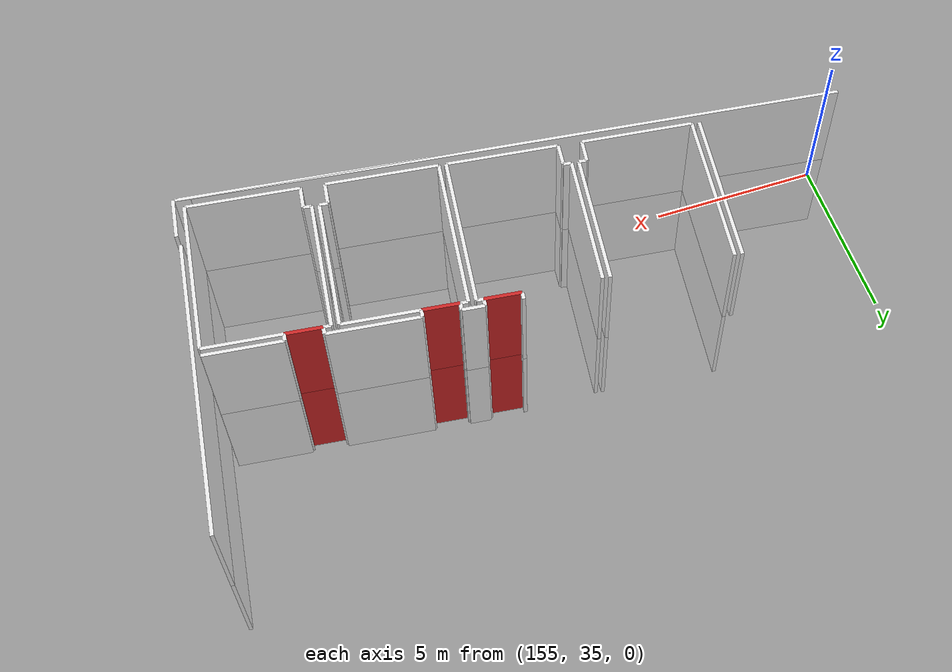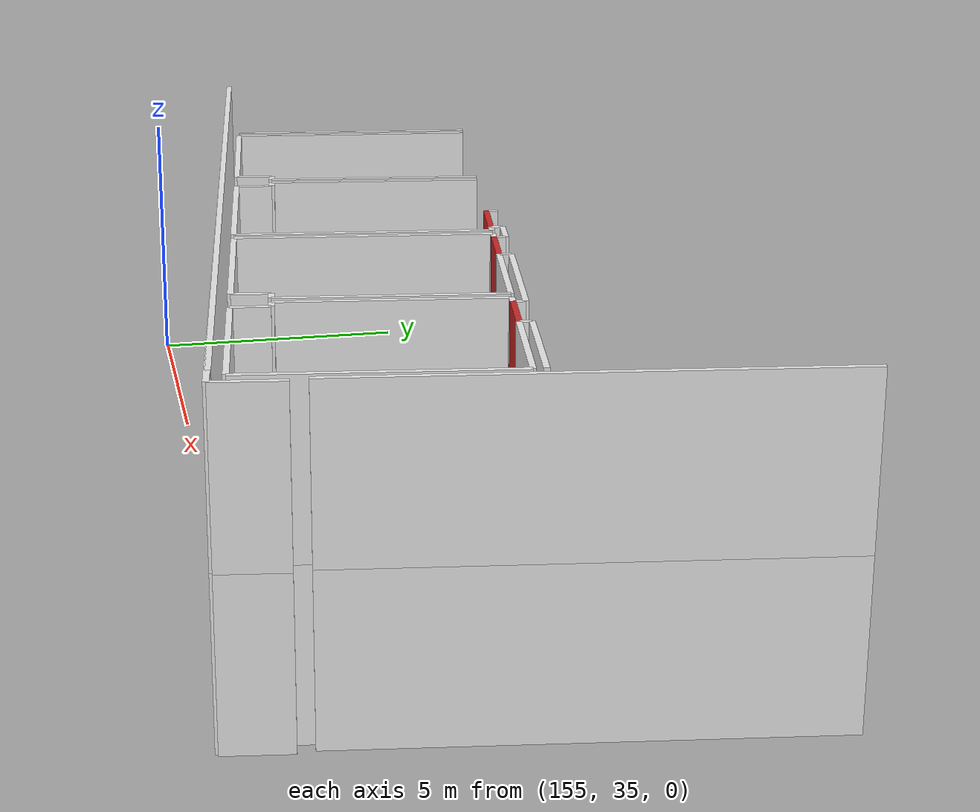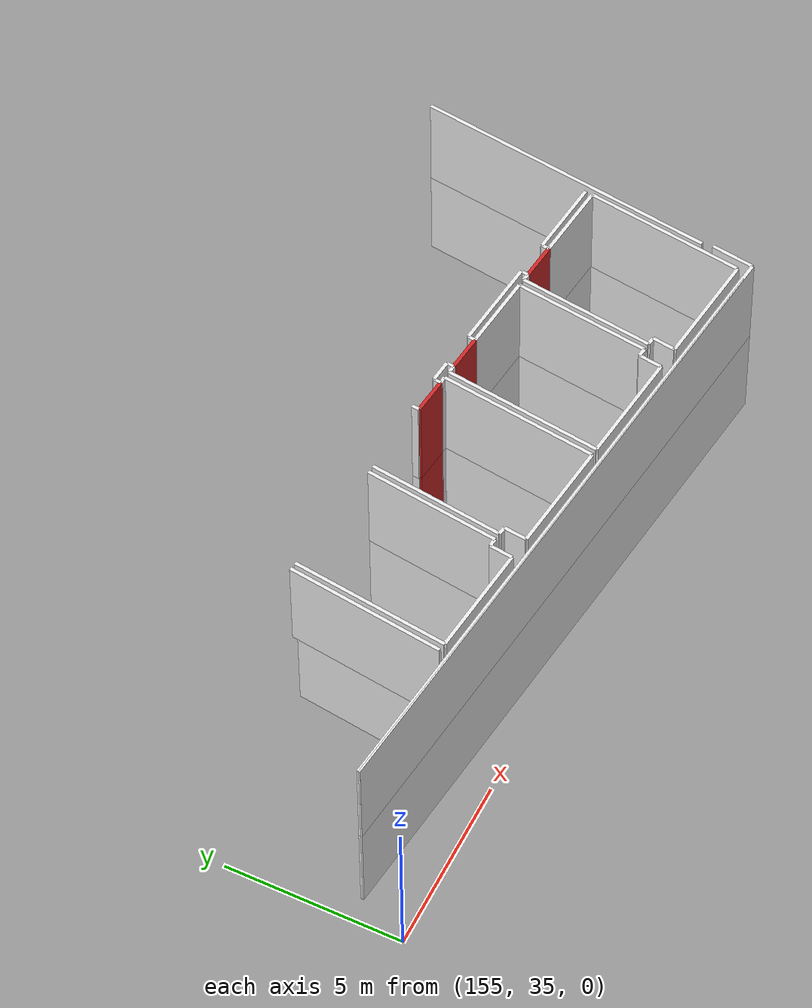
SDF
<sdf version="1.6">
 <world name="default">
  <model name="wall_166.5_39.9_1.5">
   <static>true</static>
   <pose>166.50500000000466 39.91000000014901 1.5 0 0 -0.1206236686924795</pose>
   <link name="link">
    <visual name="visual">
     <geometry><box><size>0.9972462083198822 0.1 3</size></box></geometry>
     <material>
      <script><uri>file://media/materials/scripts/gazebo.material</uri><name>Gazebo/Red</name></script>
     </material>
    </visual>
    <collision name="collision"><geometry><box><size>0.9972462083198822 0.1 3</size></box></geometry></collision>
   </link>
  </model>
  <model name="wall_168.1_39.7_1.5">
   <static>true</static>
   <pose>168.09500000000116 39.71999999997206 1.5 0 0 -0.12062366822190172</pose>
   <link name="link">
    <visual name="visual">
     <geometry><box><size>0.9972462083216332 0.1 3</size></box></geometry>
     <material>
      <script><uri>file://media/materials/scripts/gazebo.material</uri><name>Gazebo/Red</name></script>
     </material>
    </visual>
    <collision name="collision"><geometry><box><size>0.9972462083216332 0.1 3</size></box></geometry></collision>
   </link>
  </model>
  <model name="wall_171.6_39.3_1.5">
   <static>true</static>
   <pose>171.56500000000233 39.300000000046566 1.5 0 0 -0.12062366822892527</pose>
   <link name="link">
    <visual name="visual">
     <geometry><box><size>0.9972462082638486 0.1 3</size></box></geometry>
     <material>
      <script><uri>file://media/materials/scripts/gazebo.material</uri><name>Gazebo/Red</name></script>
     </material>
    </visual>
    <collision name="collision"><geometry><box><size>0.9972462082638486 0.1 3</size></box></geometry></collision>
   </link>
  </model>
  <model name="wall_166.5_39.9_4.5">
   <static>true</static>
   <pose>166.50500000000466 39.91000000014901 4.5 0 0 -0.1206236686924795</pose>
   <link name="link">
    <visual name="visual">
     <geometry><box><size>0.9972462083198822 0.1 3</size></box></geometry>
     <material>
      <script><uri>file://media/materials/scripts/gazebo.material</uri><name>Gazebo/Red</name></script>
     </material>
    </visual>
    <collision name="collision"><geometry><box><size>0.9972462083198822 0.1 3</size></box></geometry></collision>
   </link>
  </model>
  <model name="wall_168.1_39.7_4.5">
   <static>true</static>
   <pose>168.09500000000116 39.71999999997206 4.5 0 0 -0.12062366822190172</pose>
   <link name="link">
    <visual name="visual">
     <geometry><box><size>0.9972462083216332 0.1 3</size></box></geometry>
     <material>
      <script><uri>file://media/materials/scripts/gazebo.material</uri><name>Gazebo/Red</name></script>
     </material>
    </visual>
    <collision name="collision"><geometry><box><size>0.9972462083216332 0.1 3</size></box></geometry></collision>
   </link>
  </model>
  <model name="wall_171.6_39.3_4.5">
   <static>true</static>
   <pose>171.56500000000233 39.300000000046566 4.5 0 0 -0.12062366822892527</pose>
   <link name="link">
    <visual name="visual">
     <geometry><box><size>0.9972462082638486 0.1 3</size></box></geometry>
     <material>
      <script><uri>file://media/materials/scripts/gazebo.material</uri><name>Gazebo/Red</name></script>
     </material>
    </visual>
    <collision name="collision"><geometry><box><size>0.9972462082638486 0.1 3</size></box></geometry></collision>
   </link>
  </model>
  <model name="wall_166.9_37.6_1.5">
   <static>true</static>
   <pose>166.92499999998836 37.63000000012107 1.5 0 0 -1.690673321615393</pose>
   <link name="link">
    <visual name="visual">
     <geometry><box><size>4.4318055010582365 0.1 3</size></box></geometry>
     <material>
      <script><uri>file://media/materials/scripts/gazebo.material</uri><name>Gazebo/White</name></script>
     </material>
    </visual>
    <collision name="collision"><geometry><box><size>4.4318055010582365 0.1 3</size></box></geometry></collision>
   </link>
  </model>
  <model name="wall_165.1_35.6_1.5">
   <static>true</static>
   <pose>165.1349999999802 35.61499999999069 1.5 0 0 3.0208710707011033</pose>
   <link name="link">
    <visual name="visual">
     <geometry><box><size>3.0723606558584717 0.1 3</size></box></geometry>
     <material>
      <script><uri>file://media/materials/scripts/gazebo.material</uri><name>Gazebo/White</name></script>
     </material>
    </visual>
    <collision name="collision"><geometry><box><size>3.0723606558584717 0.1 3</size></box></geometry></collision>
   </link>
  </model>
  <model name="wall_163.6_36.1_1.5">
   <static>true</static>
   <pose>163.64499999998952 36.11999999987893 1.5 0 0 1.4618543698162652</pose>
   <link name="link">
    <visual name="visual">
     <geometry><box><size>0.6438167442431666 0.1 3</size></box></geometry>
     <material>
      <script><uri>file://media/materials/scripts/gazebo.material</uri><name>Gazebo/White</name></script>
     </material>
    </visual>
    <collision name="collision"><geometry><box><size>0.6438167442431666 0.1 3</size></box></geometry></collision>
   </link>
  </model>
  <model name="wall_163.6_36.5_1.5">
   <static>true</static>
   <pose>163.57000000000698 36.455000000074506 1.5 0 0 3.00606493842361</pose>
   <link name="link">
    <visual name="visual">
     <geometry><box><size>0.2220360331192952 0.1 3</size></box></geometry>
     <material>
      <script><uri>file://media/materials/scripts/gazebo.material</uri><name>Gazebo/White</name></script>
     </material>
    </visual>
    <collision name="collision"><geometry><box><size>0.2220360331192952 0.1 3</size></box></geometry></collision>
   </link>
  </model>
  <model name="wall_163.7_38.3_1.5">
   <static>true</static>
   <pose>163.69000000000233 38.34500000020489 1.5 0 0 1.44873942407576</pose>
   <link name="link">
    <visual name="visual">
     <geometry><box><size>3.7781079920994487 0.1 3</size></box></geometry>
     <material>
      <script><uri>file://media/materials/scripts/gazebo.material</uri><name>Gazebo/White</name></script>
     </material>
    </visual>
    <collision name="collision"><geometry><box><size>3.7781079920994487 0.1 3</size></box></geometry></collision>
   </link>
  </model>
  <model name="wall_167.1_39.8_1.5">
   <static>true</static>
   <pose>167.09500000000116 39.84000000008382 1.5 0 0 -0.10487693882591773</pose>
   <link name="link">
    <visual name="visual">
     <geometry><box><size>0.19104973174969345 0.1 3</size></box></geometry>
     <material>
      <script><uri>file://media/materials/scripts/gazebo.material</uri><name>Gazebo/White</name></script>
     </material>
    </visual>
    <collision name="collision"><geometry><box><size>0.19104973174969345 0.1 3</size></box></geometry></collision>
   </link>
  </model>
  <model name="wall_160.2_38.4_1.5">
   <static>true</static>
   <pose>160.17499999998836 38.44000000017695 1.5 0 0 -1.690673321615393</pose>
   <link name="link">
    <visual name="visual">
     <geometry><box><size>4.4318055010582365 0.1 3</size></box></geometry>
     <material>
      <script><uri>file://media/materials/scripts/gazebo.material</uri><name>Gazebo/White</name></script>
     </material>
    </visual>
    <collision name="collision"><geometry><box><size>4.4318055010582365 0.1 3</size></box></geometry></collision>
   </link>
  </model>
  <model name="wall_161.4_36.1_1.5">
   <static>true</static>
   <pose>161.43499999999767 36.06000000005588 1.5 0 0 -0.11748918977593945</pose>
   <link name="link">
    <visual name="visual">
     <geometry><box><size>3.071172414652986 0.1 3</size></box></geometry>
     <material>
      <script><uri>file://media/materials/scripts/gazebo.material</uri><name>Gazebo/White</name></script>
     </material>
    </visual>
    <collision name="collision"><geometry><box><size>3.071172414652986 0.1 3</size></box></geometry></collision>
   </link>
  </model>
  <model name="wall_163.0_36.2_1.5">
   <static>true</static>
   <pose>163.0 36.199999999953434 1.5 0 0 1.4464413323376855</pose>
   <link name="link">
    <visual name="visual">
     <geometry><box><size>0.6449806199880641 0.1 3</size></box></geometry>
     <material>
      <script><uri>file://media/materials/scripts/gazebo.material</uri><name>Gazebo/White</name></script>
     </material>
    </visual>
    <collision name="collision"><geometry><box><size>0.6449806199880641 0.1 3</size></box></geometry></collision>
   </link>
  </model>
  <model name="wall_163.1_36.5_1.5">
   <static>true</static>
   <pose>163.14999999999418 36.50500000012107 1.5 0 0 -0.13552771305276134</pose>
   <link name="link">
    <visual name="visual">
     <geometry><box><size>0.22203603311405212 0.1 3</size></box></geometry>
     <material>
      <script><uri>file://media/materials/scripts/gazebo.material</uri><name>Gazebo/White</name></script>
     </material>
    </visual>
    <collision name="collision"><geometry><box><size>0.22203603311405212 0.1 3</size></box></geometry></collision>
   </link>
  </model>
  <model name="wall_163.5_38.4_1.5">
   <static>true</static>
   <pose>163.4899999999907 38.37000000011176 1.5 0 0 1.4490608416488255</pose>
   <link name="link">
    <visual name="visual">
     <geometry><box><size>3.7880337905415886 0.1 3</size></box></geometry>
     <material>
      <script><uri>file://media/materials/scripts/gazebo.material</uri><name>Gazebo/White</name></script>
     </material>
    </visual>
    <collision name="collision"><geometry><box><size>3.7880337905415886 0.1 3</size></box></geometry></collision>
   </link>
  </model>
  <model name="wall_170.4_37.5_1.5">
   <static>true</static>
   <pose>170.44499999997788 37.53000000002794 1.5 0 0 -1.6899106225096845</pose>
   <link name="link">
    <visual name="visual">
     <geometry><box><size>3.7868324496644155 0.1 3</size></box></geometry>
     <material>
      <script><uri>file://media/materials/scripts/gazebo.material</uri><name>Gazebo/White</name></script>
     </material>
    </visual>
    <collision name="collision"><geometry><box><size>3.7868324496644155 0.1 3</size></box></geometry></collision>
   </link>
  </model>
  <model name="wall_170.1_35.7_1.5">
   <static>true</static>
   <pose>170.10499999998137 35.66500000003725 1.5 0 0 3.0118901153086775</pose>
   <link name="link">
    <visual name="visual">
     <geometry><box><size>0.23194827011012187 0.1 3</size></box></geometry>
     <material>
      <script><uri>file://media/materials/scripts/gazebo.material</uri><name>Gazebo/White</name></script>
     </material>
    </visual>
    <collision name="collision"><geometry><box><size>0.23194827011012187 0.1 3</size></box></geometry></collision>
   </link>
  </model>
  <model name="wall_169.9_35.4_1.5">
   <static>true</static>
   <pose>169.94999999998254 35.360000000102445 1.5 0 0 -1.695151321341658</pose>
   <link name="link">
    <visual name="visual">
     <geometry><box><size>0.6449806199952839 0.1 3</size></box></geometry>
     <material>
      <script><uri>file://media/materials/scripts/gazebo.material</uri><name>Gazebo/White</name></script>
     </material>
    </visual>
    <collision name="collision"><geometry><box><size>0.6449806199952839 0.1 3</size></box></geometry></collision>
   </link>
  </model>
  <model name="wall_168.4_35.2_1.5">
   <static>true</static>
   <pose>168.3849999999802 35.22500000009313 1.5 0 0 3.020871070550642</pose>
   <link name="link">
    <visual name="visual">
     <geometry><box><size>3.0723606559145504 0.1 3</size></box></geometry>
     <material>
      <script><uri>file://media/materials/scripts/gazebo.material</uri><name>Gazebo/White</name></script>
     </material>
    </visual>
    <collision name="collision"><geometry><box><size>3.0723606559145504 0.1 3</size></box></geometry></collision>
   </link>
  </model>
  <model name="wall_167.1_37.6_1.5">
   <static>true</static>
   <pose>167.125 37.60499999998137 1.5 0 0 1.4506488810357367</pose>
   <link name="link">
    <visual name="visual">
     <geometry><box><size>4.421877428998444 0.1 3</size></box></geometry>
     <material>
      <script><uri>file://media/materials/scripts/gazebo.material</uri><name>Gazebo/White</name></script>
     </material>
    </visual>
    <collision name="collision"><geometry><box><size>4.421877428998444 0.1 3</size></box></geometry></collision>
   </link>
  </model>
  <model name="wall_167.5_39.8_1.5">
   <static>true</static>
   <pose>167.49499999999534 39.78999999980442 1.5 0 0 -0.09495170644739931</pose>
   <link name="link">
    <visual name="visual">
     <geometry><box><size>0.21095023106197072 0.1 3</size></box></geometry>
     <material>
      <script><uri>file://media/materials/scripts/gazebo.material</uri><name>Gazebo/White</name></script>
     </material>
    </visual>
    <collision name="collision"><geometry><box><size>0.21095023106197072 0.1 3</size></box></geometry></collision>
   </link>
  </model>
  <model name="wall_169.6_39.5_1.5">
   <static>true</static>
   <pose>169.63000000000466 39.53500000014901 1.5 0 0 -0.11961849947817037</pose>
   <link name="link">
    <visual name="visual">
     <geometry><box><size>2.094970166810415 0.1 3</size></box></geometry>
     <material>
      <script><uri>file://media/materials/scripts/gazebo.material</uri><name>Gazebo/White</name></script>
     </material>
    </visual>
    <collision name="collision"><geometry><box><size>2.094970166810415 0.1 3</size></box></geometry></collision>
   </link>
  </model>
  <model name="wall_174.5_39.9_1.5">
   <static>true</static>
   <pose>174.4550000000163 39.90500000002794 1.5 0 0 -1.6917434222515764</pose>
   <link name="link">
    <visual name="visual">
     <geometry><box><size>8.371152847783126 0.1 3</size></box></geometry>
     <material>
      <script><uri>file://media/materials/scripts/gazebo.material</uri><name>Gazebo/White</name></script>
     </material>
    </visual>
    <collision name="collision"><geometry><box><size>8.371152847783126 0.1 3</size></box></geometry></collision>
   </link>
  </model>
  <model name="wall_171.0_39.4_1.5">
   <static>true</static>
   <pose>170.97000000000116 39.36999999987893 1.5 0 0 -0.09966865257760905</pose>
   <link name="link">
    <visual name="visual">
     <geometry><box><size>0.20099751243585498 0.1 3</size></box></geometry>
     <material>
      <script><uri>file://media/materials/scripts/gazebo.material</uri><name>Gazebo/White</name></script>
     </material>
    </visual>
    <collision name="collision"><geometry><box><size>0.20099751243585498 0.1 3</size></box></geometry></collision>
   </link>
  </model>
  <model name="wall_173.1_39.1_1.5">
   <static>true</static>
   <pose>173.10500000001048 39.11500000022352 1.5 0 0 -0.11905156754423915</pose>
   <link name="link">
    <visual name="visual">
     <geometry><box><size>2.1048990474859015 0.1 3</size></box></geometry>
     <material>
      <script><uri>file://media/materials/scripts/gazebo.material</uri><name>Gazebo/White</name></script>
     </material>
    </visual>
    <collision name="collision"><geometry><box><size>2.1048990474859015 0.1 3</size></box></geometry></collision>
   </link>
  </model>
  <model name="wall_173.9_36.8_1.5">
   <static>true</static>
   <pose>173.88000000000466 36.79000000003725 1.5 0 0 -1.6929129367177644</pose>
   <link name="link">
    <visual name="visual">
     <geometry><box><size>4.43301252009494 0.1 3</size></box></geometry>
     <material>
      <script><uri>file://media/materials/scripts/gazebo.material</uri><name>Gazebo/White</name></script>
     </material>
    </visual>
    <collision name="collision"><geometry><box><size>4.43301252009494 0.1 3</size></box></geometry></collision>
   </link>
  </model>
  <model name="wall_172.1_34.8_1.5">
   <static>true</static>
   <pose>172.08499999999185 34.77499999990687 1.5 0 0 3.020871070550642</pose>
   <link name="link">
    <visual name="visual">
     <geometry><box><size>3.0723606559145504 0.1 3</size></box></geometry>
     <material>
      <script><uri>file://media/materials/scripts/gazebo.material</uri><name>Gazebo/White</name></script>
     </material>
    </visual>
    <collision name="collision"><geometry><box><size>3.0723606559145504 0.1 3</size></box></geometry></collision>
   </link>
  </model>
  <model name="wall_170.6_35.3_1.5">
   <static>true</static>
   <pose>170.60000000000582 35.28000000002794 1.5 0 0 1.446441332248135</pose>
   <link name="link">
    <visual name="visual">
     <geometry><box><size>0.6449806199952839 0.1 3</size></box></geometry>
     <material>
      <script><uri>file://media/materials/scripts/gazebo.material</uri><name>Gazebo/White</name></script>
     </material>
    </visual>
    <collision name="collision"><geometry><box><size>0.6449806199952839 0.1 3</size></box></geometry></collision>
   </link>
  </model>
  <model name="wall_170.5_35.6_1.5">
   <static>true</static>
   <pose>170.52999999999884 35.61499999999069 1.5 0 0 3.006064940537032</pose>
   <link name="link">
    <visual name="visual">
     <geometry><box><size>0.22203603311405212 0.1 3</size></box></geometry>
     <material>
      <script><uri>file://media/materials/scripts/gazebo.material</uri><name>Gazebo/White</name></script>
     </material>
    </visual>
    <collision name="collision"><geometry><box><size>0.22203603311405212 0.1 3</size></box></geometry></collision>
   </link>
  </model>
  <model name="wall_170.6_37.5_1.5">
   <static>true</static>
   <pose>170.64499999998952 37.50499999988824 1.5 0 0 1.4513674007734978</pose>
   <link name="link">
    <visual name="visual">
     <geometry><box><size>3.7769034936056385 0.1 3</size></box></geometry>
     <material>
      <script><uri>file://media/materials/scripts/gazebo.material</uri><name>Gazebo/White</name></script>
     </material>
    </visual>
    <collision name="collision"><geometry><box><size>3.7769034936056385 0.1 3</size></box></geometry></collision>
   </link>
  </model>
  <model name="wall_173.1_39.3_1.5">
   <static>true</static>
   <pose>173.125 39.31499999994412 1.5 0 0 3.0225410860422697</pose>
   <link name="link">
    <visual name="visual">
     <geometry><box><size>2.104899047428106 0.1 3</size></box></geometry>
     <material>
      <script><uri>file://media/materials/scripts/gazebo.material</uri><name>Gazebo/White</name></script>
     </material>
    </visual>
    <collision name="collision"><geometry><box><size>2.104899047428106 0.1 3</size></box></geometry></collision>
   </link>
  </model>
  <model name="wall_172.1_39.3_1.5">
   <static>true</static>
   <pose>172.07000000000698 39.34000000008382 1.5 0 0 -1.670464979516584</pose>
   <link name="link">
    <visual name="visual">
     <geometry><box><size>0.20099751214626105 0.1 3</size></box></geometry>
     <material>
      <script><uri>file://media/materials/scripts/gazebo.material</uri><name>Gazebo/White</name></script>
     </material>
    </visual>
    <collision name="collision"><geometry><box><size>0.20099751214626105 0.1 3</size></box></geometry></collision>
   </link>
  </model>
  <model name="wall_171.1_39.5_1.5">
   <static>true</static>
   <pose>171.0800000000163 39.45999999996275 1.5 0 0 1.4711276743037347</pose>
   <link name="link">
    <visual name="visual">
     <geometry><box><size>0.20099751260961132 0.1 3</size></box></geometry>
     <material>
      <script><uri>file://media/materials/scripts/gazebo.material</uri><name>Gazebo/White</name></script>
     </material>
    </visual>
    <collision name="collision"><geometry><box><size>0.20099751260961132 0.1 3</size></box></geometry></collision>
   </link>
  </model>
  <model name="wall_169.9_39.7_1.5">
   <static>true</static>
   <pose>169.85500000001048 39.70999999996275 1.5 0 0 3.0207271763608894</pose>
   <link name="link">
    <visual name="visual">
     <geometry><box><size>2.4881519246295563 0.1 3</size></box></geometry>
     <material>
      <script><uri>file://media/materials/scripts/gazebo.material</uri><name>Gazebo/White</name></script>
     </material>
    </visual>
    <collision name="collision"><geometry><box><size>2.4881519246295563 0.1 3</size></box></geometry></collision>
   </link>
  </model>
  <model name="wall_168.6_39.8_1.5">
   <static>true</static>
   <pose>168.60500000001048 39.76000000000931 1.5 0 0 -1.7196862744613206</pose>
   <link name="link">
    <visual name="visual">
     <geometry><box><size>0.20223748388077126 0.1 3</size></box></geometry>
     <material>
      <script><uri>file://media/materials/scripts/gazebo.material</uri><name>Gazebo/White</name></script>
     </material>
    </visual>
    <collision name="collision"><geometry><box><size>0.20223748388077126 0.1 3</size></box></geometry></collision>
   </link>
  </model>
  <model name="wall_167.6_39.9_1.5">
   <static>true</static>
   <pose>167.60999999998603 39.87999999988824 1.5 0 0 1.4711276743037347</pose>
   <link name="link">
    <visual name="visual">
     <geometry><box><size>0.20099751260961132 0.1 3</size></box></geometry>
     <material>
      <script><uri>file://media/materials/scripts/gazebo.material</uri><name>Gazebo/White</name></script>
     </material>
    </visual>
    <collision name="collision"><geometry><box><size>0.20099751260961132 0.1 3</size></box></geometry></collision>
   </link>
  </model>
  <model name="wall_167.3_40.0_1.5">
   <static>true</static>
   <pose>167.32000000000698 40.014999999897555 1.5 0 0 3.0254510269809813</pose>
   <link name="link">
    <visual name="visual">
     <geometry><box><size>0.6040695323790061 0.1 3</size></box></geometry>
     <material>
      <script><uri>file://media/materials/scripts/gazebo.material</uri><name>Gazebo/White</name></script>
     </material>
    </visual>
    <collision name="collision"><geometry><box><size>0.6040695323790061 0.1 3</size></box></geometry></collision>
   </link>
  </model>
  <model name="wall_167.0_39.9_1.5">
   <static>true</static>
   <pose>167.0100000000093 39.949999999953434 1.5 0 0 -1.670464979516584</pose>
   <link name="link">
    <visual name="visual">
     <geometry><box><size>0.20099751214626105 0.1 3</size></box></geometry>
     <material>
      <script><uri>file://media/materials/scripts/gazebo.material</uri><name>Gazebo/White</name></script>
     </material>
    </visual>
    <collision name="collision"><geometry><box><size>0.20099751214626105 0.1 3</size></box></geometry></collision>
   </link>
  </model>
  <model name="wall_166.0_40.1_1.5">
   <static>true</static>
   <pose>166.02000000001863 40.07000000006519 1.5 0 0 1.471127674073209</pose>
   <link name="link">
    <visual name="visual">
     <geometry><box><size>0.20099751214626105 0.1 3</size></box></geometry>
     <material>
      <script><uri>file://media/materials/scripts/gazebo.material</uri><name>Gazebo/White</name></script>
     </material>
    </visual>
    <collision name="collision"><geometry><box><size>0.20099751214626105 0.1 3</size></box></geometry></collision>
   </link>
  </model>
  <model name="wall_164.5_35.4_1.5">
   <static>true</static>
   <pose>164.52499999999418 35.41500000003725 1.5 0 0 -0.11969610327774036</pose>
   <link name="link">
    <visual name="visual">
     <geometry><box><size>17.837628766185997 0.1 3</size></box></geometry>
     <material>
      <script><uri>file://media/materials/scripts/gazebo.material</uri><name>Gazebo/White</name></script>
     </material>
    </visual>
    <collision name="collision"><geometry><box><size>17.837628766185997 0.1 3</size></box></geometry></collision>
   </link>
  </model>
  <model name="wall_173.6_34.3_1.5">
   <static>true</static>
   <pose>173.6149999999907 34.31499999994412 1.5 0 0 -0.14784936588774888</pose>
   <link name="link">
    <visual name="visual">
     <geometry><box><size>0.4751841748369362 0.1 3</size></box></geometry>
     <material>
      <script><uri>file://media/materials/scripts/gazebo.material</uri><name>Gazebo/White</name></script>
     </material>
    </visual>
    <collision name="collision"><geometry><box><size>0.4751841748369362 0.1 3</size></box></geometry></collision>
   </link>
  </model>
  <model name="wall_173.9_34.9_1.5">
   <static>true</static>
   <pose>173.92499999998836 34.86999999987893 1.5 0 0 1.4443558295348613</pose>
   <link name="link">
    <visual name="visual">
     <geometry><box><size>1.1894956916284358 0.1 3</size></box></geometry>
     <material>
      <script><uri>file://media/materials/scripts/gazebo.material</uri><name>Gazebo/White</name></script>
     </material>
    </visual>
    <collision name="collision"><geometry><box><size>1.1894956916284358 0.1 3</size></box></geometry></collision>
   </link>
  </model>
  <model name="wall_164.8_35.4_1.5">
   <static>true</static>
   <pose>164.7599999999802 35.37999999988824 1.5 0 0 3.0211661134919177</pose>
   <link name="link">
    <visual name="visual">
     <geometry><box><size>18.312629521741698 0.1 3</size></box></geometry>
     <material>
      <script><uri>file://media/materials/scripts/gazebo.material</uri><name>Gazebo/White</name></script>
     </material>
    </visual>
    <collision name="collision"><geometry><box><size>18.312629521741698 0.1 3</size></box></geometry></collision>
   </link>
  </model>
  <model name="wall_166.9_37.6_4.5">
   <static>true</static>
   <pose>166.92499999998836 37.63000000012107 4.5 0 0 -1.690673321615393</pose>
   <link name="link">
    <visual name="visual">
     <geometry><box><size>4.4318055010582365 0.1 3</size></box></geometry>
     <material>
      <script><uri>file://media/materials/scripts/gazebo.material</uri><name>Gazebo/White</name></script>
     </material>
    </visual>
    <collision name="collision"><geometry><box><size>4.4318055010582365 0.1 3</size></box></geometry></collision>
   </link>
  </model>
  <model name="wall_165.1_35.6_4.5">
   <static>true</static>
   <pose>165.1349999999802 35.61499999999069 4.5 0 0 3.0208710707011033</pose>
   <link name="link">
    <visual name="visual">
     <geometry><box><size>3.0723606558584717 0.1 3</size></box></geometry>
     <material>
      <script><uri>file://media/materials/scripts/gazebo.material</uri><name>Gazebo/White</name></script>
     </material>
    </visual>
    <collision name="collision"><geometry><box><size>3.0723606558584717 0.1 3</size></box></geometry></collision>
   </link>
  </model>
  <model name="wall_163.6_36.1_4.5">
   <static>true</static>
   <pose>163.64499999998952 36.11999999987893 4.5 0 0 1.4618543698162652</pose>
   <link name="link">
    <visual name="visual">
     <geometry><box><size>0.6438167442431666 0.1 3</size></box></geometry>
     <material>
      <script><uri>file://media/materials/scripts/gazebo.material</uri><name>Gazebo/White</name></script>
     </material>
    </visual>
    <collision name="collision"><geometry><box><size>0.6438167442431666 0.1 3</size></box></geometry></collision>
   </link>
  </model>
  <model name="wall_163.6_36.5_4.5">
   <static>true</static>
   <pose>163.57000000000698 36.455000000074506 4.5 0 0 3.00606493842361</pose>
   <link name="link">
    <visual name="visual">
     <geometry><box><size>0.2220360331192952 0.1 3</size></box></geometry>
     <material>
      <script><uri>file://media/materials/scripts/gazebo.material</uri><name>Gazebo/White</name></script>
     </material>
    </visual>
    <collision name="collision"><geometry><box><size>0.2220360331192952 0.1 3</size></box></geometry></collision>
   </link>
  </model>
  <model name="wall_163.7_38.3_4.5">
   <static>true</static>
   <pose>163.69000000000233 38.34500000020489 4.5 0 0 1.44873942407576</pose>
   <link name="link">
    <visual name="visual">
     <geometry><box><size>3.7781079920994487 0.1 3</size></box></geometry>
     <material>
      <script><uri>file://media/materials/scripts/gazebo.material</uri><name>Gazebo/White</name></script>
     </material>
    </visual>
    <collision name="collision"><geometry><box><size>3.7781079920994487 0.1 3</size></box></geometry></collision>
   </link>
  </model>
  <model name="wall_167.1_39.8_4.5">
   <static>true</static>
   <pose>167.09500000000116 39.84000000008382 4.5 0 0 -0.10487693882591773</pose>
   <link name="link">
    <visual name="visual">
     <geometry><box><size>0.19104973174969345 0.1 3</size></box></geometry>
     <material>
      <script><uri>file://media/materials/scripts/gazebo.material</uri><name>Gazebo/White</name></script>
     </material>
    </visual>
    <collision name="collision"><geometry><box><size>0.19104973174969345 0.1 3</size></box></geometry></collision>
   </link>
  </model>
  <model name="wall_160.2_38.4_4.5">
   <static>true</static>
   <pose>160.17499999998836 38.44000000017695 4.5 0 0 -1.690673321615393</pose>
   <link name="link">
    <visual name="visual">
     <geometry><box><size>4.4318055010582365 0.1 3</size></box></geometry>
     <material>
      <script><uri>file://media/materials/scripts/gazebo.material</uri><name>Gazebo/White</name></script>
     </material>
    </visual>
    <collision name="collision"><geometry><box><size>4.4318055010582365 0.1 3</size></box></geometry></collision>
   </link>
  </model>
  <model name="wall_161.4_36.1_4.5">
   <static>true</static>
   <pose>161.43499999999767 36.06000000005588 4.5 0 0 -0.11748918977593945</pose>
   <link name="link">
    <visual name="visual">
     <geometry><box><size>3.071172414652986 0.1 3</size></box></geometry>
     <material>
      <script><uri>file://media/materials/scripts/gazebo.material</uri><name>Gazebo/White</name></script>
     </material>
    </visual>
    <collision name="collision"><geometry><box><size>3.071172414652986 0.1 3</size></box></geometry></collision>
   </link>
  </model>
  <model name="wall_163.0_36.2_4.5">
   <static>true</static>
   <pose>163.0 36.199999999953434 4.5 0 0 1.4464413323376855</pose>
   <link name="link">
    <visual name="visual">
     <geometry><box><size>0.6449806199880641 0.1 3</size></box></geometry>
     <material>
      <script><uri>file://media/materials/scripts/gazebo.material</uri><name>Gazebo/White</name></script>
     </material>
    </visual>
    <collision name="collision"><geometry><box><size>0.6449806199880641 0.1 3</size></box></geometry></collision>
   </link>
  </model>
  <model name="wall_163.1_36.5_4.5">
   <static>true</static>
   <pose>163.14999999999418 36.50500000012107 4.5 0 0 -0.13552771305276134</pose>
   <link name="link">
    <visual name="visual">
     <geometry><box><size>0.22203603311405212 0.1 3</size></box></geometry>
     <material>
      <script><uri>file://media/materials/scripts/gazebo.material</uri><name>Gazebo/White</name></script>
     </material>
    </visual>
    <collision name="collision"><geometry><box><size>0.22203603311405212 0.1 3</size></box></geometry></collision>
   </link>
  </model>
  <model name="wall_163.5_38.4_4.5">
   <static>true</static>
   <pose>163.4899999999907 38.37000000011176 4.5 0 0 1.4490608416488255</pose>
   <link name="link">
    <visual name="visual">
     <geometry><box><size>3.7880337905415886 0.1 3</size></box></geometry>
     <material>
      <script><uri>file://media/materials/scripts/gazebo.material</uri><name>Gazebo/White</name></script>
     </material>
    </visual>
    <collision name="collision"><geometry><box><size>3.7880337905415886 0.1 3</size></box></geometry></collision>
   </link>
  </model>
  <model name="wall_170.4_37.5_4.5">
   <static>true</static>
   <pose>170.44499999997788 37.53000000002794 4.5 0 0 -1.6899106225096845</pose>
   <link name="link">
    <visual name="visual">
     <geometry><box><size>3.7868324496644155 0.1 3</size></box></geometry>
     <material>
      <script><uri>file://media/materials/scripts/gazebo.material</uri><name>Gazebo/White</name></script>
     </material>
    </visual>
    <collision name="collision"><geometry><box><size>3.7868324496644155 0.1 3</size></box></geometry></collision>
   </link>
  </model>
  <model name="wall_170.1_35.7_4.5">
   <static>true</static>
   <pose>170.10499999998137 35.66500000003725 4.5 0 0 3.0118901153086775</pose>
   <link name="link">
    <visual name="visual">
     <geometry><box><size>0.23194827011012187 0.1 3</size></box></geometry>
     <material>
      <script><uri>file://media/materials/scripts/gazebo.material</uri><name>Gazebo/White</name></script>
     </material>
    </visual>
    <collision name="collision"><geometry><box><size>0.23194827011012187 0.1 3</size></box></geometry></collision>
   </link>
  </model>
  <model name="wall_169.9_35.4_4.5">
   <static>true</static>
   <pose>169.94999999998254 35.360000000102445 4.5 0 0 -1.695151321341658</pose>
   <link name="link">
    <visual name="visual">
     <geometry><box><size>0.6449806199952839 0.1 3</size></box></geometry>
     <material>
      <script><uri>file://media/materials/scripts/gazebo.material</uri><name>Gazebo/White</name></script>
     </material>
    </visual>
    <collision name="collision"><geometry><box><size>0.6449806199952839 0.1 3</size></box></geometry></collision>
   </link>
  </model>
  <model name="wall_168.4_35.2_4.5">
   <static>true</static>
   <pose>168.3849999999802 35.22500000009313 4.5 0 0 3.020871070550642</pose>
   <link name="link">
    <visual name="visual">
     <geometry><box><size>3.0723606559145504 0.1 3</size></box></geometry>
     <material>
      <script><uri>file://media/materials/scripts/gazebo.material</uri><name>Gazebo/White</name></script>
     </material>
    </visual>
    <collision name="collision"><geometry><box><size>3.0723606559145504 0.1 3</size></box></geometry></collision>
   </link>
  </model>
  <model name="wall_167.1_37.6_4.5">
   <static>true</static>
   <pose>167.125 37.60499999998137 4.5 0 0 1.4506488810357367</pose>
   <link name="link">
    <visual name="visual">
     <geometry><box><size>4.421877428998444 0.1 3</size></box></geometry>
     <material>
      <script><uri>file://media/materials/scripts/gazebo.material</uri><name>Gazebo/White</name></script>
     </material>
    </visual>
    <collision name="collision"><geometry><box><size>4.421877428998444 0.1 3</size></box></geometry></collision>
   </link>
  </model>
  <model name="wall_167.5_39.8_4.5">
   <static>true</static>
   <pose>167.49499999999534 39.78999999980442 4.5 0 0 -0.09495170644739931</pose>
   <link name="link">
    <visual name="visual">
     <geometry><box><size>0.21095023106197072 0.1 3</size></box></geometry>
     <material>
      <script><uri>file://media/materials/scripts/gazebo.material</uri><name>Gazebo/White</name></script>
     </material>
    </visual>
    <collision name="collision"><geometry><box><size>0.21095023106197072 0.1 3</size></box></geometry></collision>
   </link>
  </model>
  <model name="wall_169.6_39.5_4.5">
   <static>true</static>
   <pose>169.63000000000466 39.53500000014901 4.5 0 0 -0.11961849947817037</pose>
   <link name="link">
    <visual name="visual">
     <geometry><box><size>2.094970166810415 0.1 3</size></box></geometry>
     <material>
      <script><uri>file://media/materials/scripts/gazebo.material</uri><name>Gazebo/White</name></script>
     </material>
    </visual>
    <collision name="collision"><geometry><box><size>2.094970166810415 0.1 3</size></box></geometry></collision>
   </link>
  </model>
  <model name="wall_174.5_39.9_4.5">
   <static>true</static>
   <pose>174.4550000000163 39.90500000002794 4.5 0 0 -1.6917434222515764</pose>
   <link name="link">
    <visual name="visual">
     <geometry><box><size>8.371152847783126 0.1 3</size></box></geometry>
     <material>
      <script><uri>file://media/materials/scripts/gazebo.material</uri><name>Gazebo/White</name></script>
     </material>
    </visual>
    <collision name="collision"><geometry><box><size>8.371152847783126 0.1 3</size></box></geometry></collision>
   </link>
  </model>
  <model name="wall_160.0_38.5_4.5">
   <static>true</static>
   <pose>159.97000000000116 38.46999999997206 4.5 0 0 -1.6929129367175275</pose>
   <link name="link">
    <visual name="visual">
     <geometry><box><size>4.433012519625655 0.1 3</size></box></geometry>
     <material>
      <script><uri>file://media/materials/scripts/gazebo.material</uri><name>Gazebo/White</name></script>
     </material>
    </visual>
    <collision name="collision"><geometry><box><size>4.433012519625655 0.1 3</size></box></geometry></collision>
   </link>
  </model>
  <model name="wall_171.0_39.4_4.5">
   <static>true</static>
   <pose>170.97000000000116 39.36999999987893 4.5 0 0 -0.09966865257760905</pose>
   <link name="link">
    <visual name="visual">
     <geometry><box><size>0.20099751243585498 0.1 3</size></box></geometry>
     <material>
      <script><uri>file://media/materials/scripts/gazebo.material</uri><name>Gazebo/White</name></script>
     </material>
    </visual>
    <collision name="collision"><geometry><box><size>0.20099751243585498 0.1 3</size></box></geometry></collision>
   </link>
  </model>
  <model name="wall_173.1_39.1_4.5">
   <static>true</static>
   <pose>173.10500000001048 39.11500000022352 4.5 0 0 -0.11905156754423915</pose>
   <link name="link">
    <visual name="visual">
     <geometry><box><size>2.1048990474859015 0.1 3</size></box></geometry>
     <material>
      <script><uri>file://media/materials/scripts/gazebo.material</uri><name>Gazebo/White</name></script>
     </material>
    </visual>
    <collision name="collision"><geometry><box><size>2.1048990474859015 0.1 3</size></box></geometry></collision>
   </link>
  </model>
  <model name="wall_173.9_36.8_4.5">
   <static>true</static>
   <pose>173.88000000000466 36.79000000003725 4.5 0 0 -1.6929129367177644</pose>
   <link name="link">
    <visual name="visual">
     <geometry><box><size>4.43301252009494 0.1 3</size></box></geometry>
     <material>
      <script><uri>file://media/materials/scripts/gazebo.material</uri><name>Gazebo/White</name></script>
     </material>
    </visual>
    <collision name="collision"><geometry><box><size>4.43301252009494 0.1 3</size></box></geometry></collision>
   </link>
  </model>
  <model name="wall_172.1_34.8_4.5">
   <static>true</static>
   <pose>172.08499999999185 34.77499999990687 4.5 0 0 3.020871070550642</pose>
   <link name="link">
    <visual name="visual">
     <geometry><box><size>3.0723606559145504 0.1 3</size></box></geometry>
     <material>
      <script><uri>file://media/materials/scripts/gazebo.material</uri><name>Gazebo/White</name></script>
     </material>
    </visual>
    <collision name="collision"><geometry><box><size>3.0723606559145504 0.1 3</size></box></geometry></collision>
   </link>
  </model>
  <model name="wall_170.6_35.3_4.5">
   <static>true</static>
   <pose>170.60000000000582 35.28000000002794 4.5 0 0 1.446441332248135</pose>
   <link name="link">
    <visual name="visual">
     <geometry><box><size>0.6449806199952839 0.1 3</size></box></geometry>
     <material>
      <script><uri>file://media/materials/scripts/gazebo.material</uri><name>Gazebo/White</name></script>
     </material>
    </visual>
    <collision name="collision"><geometry><box><size>0.6449806199952839 0.1 3</size></box></geometry></collision>
   </link>
  </model>
  <model name="wall_170.5_35.6_4.5">
   <static>true</static>
   <pose>170.52999999999884 35.61499999999069 4.5 0 0 3.006064940537032</pose>
   <link name="link">
    <visual name="visual">
     <geometry><box><size>0.22203603311405212 0.1 3</size></box></geometry>
     <material>
      <script><uri>file://media/materials/scripts/gazebo.material</uri><name>Gazebo/White</name></script>
     </material>
    </visual>
    <collision name="collision"><geometry><box><size>0.22203603311405212 0.1 3</size></box></geometry></collision>
   </link>
  </model>
  <model name="wall_170.6_37.5_4.5">
   <static>true</static>
   <pose>170.64499999998952 37.50499999988824 4.5 0 0 1.4513674007734978</pose>
   <link name="link">
    <visual name="visual">
     <geometry><box><size>3.7769034936056385 0.1 3</size></box></geometry>
     <material>
      <script><uri>file://media/materials/scripts/gazebo.material</uri><name>Gazebo/White</name></script>
     </material>
    </visual>
    <collision name="collision"><geometry><box><size>3.7769034936056385 0.1 3</size></box></geometry></collision>
   </link>
  </model>
  <model name="wall_173.1_39.3_4.5">
   <static>true</static>
   <pose>173.125 39.31499999994412 4.5 0 0 3.0225410860422697</pose>
   <link name="link">
    <visual name="visual">
     <geometry><box><size>2.104899047428106 0.1 3</size></box></geometry>
     <material>
      <script><uri>file://media/materials/scripts/gazebo.material</uri><name>Gazebo/White</name></script>
     </material>
    </visual>
    <collision name="collision"><geometry><box><size>2.104899047428106 0.1 3</size></box></geometry></collision>
   </link>
  </model>
  <model name="wall_172.1_39.3_4.5">
   <static>true</static>
   <pose>172.07000000000698 39.34000000008382 4.5 0 0 -1.670464979516584</pose>
   <link name="link">
    <visual name="visual">
     <geometry><box><size>0.20099751214626105 0.1 3</size></box></geometry>
     <material>
      <script><uri>file://media/materials/scripts/gazebo.material</uri><name>Gazebo/White</name></script>
     </material>
    </visual>
    <collision name="collision"><geometry><box><size>0.20099751214626105 0.1 3</size></box></geometry></collision>
   </link>
  </model>
  <model name="wall_171.1_39.5_4.5">
   <static>true</static>
   <pose>171.0800000000163 39.45999999996275 4.5 0 0 1.4711276743037347</pose>
   <link name="link">
    <visual name="visual">
     <geometry><box><size>0.20099751260961132 0.1 3</size></box></geometry>
     <material>
      <script><uri>file://media/materials/scripts/gazebo.material</uri><name>Gazebo/White</name></script>
     </material>
    </visual>
    <collision name="collision"><geometry><box><size>0.20099751260961132 0.1 3</size></box></geometry></collision>
   </link>
  </model>
  <model name="wall_169.9_39.7_4.5">
   <static>true</static>
   <pose>169.85500000001048 39.70999999996275 4.5 0 0 3.0207271763608894</pose>
   <link name="link">
    <visual name="visual">
     <geometry><box><size>2.4881519246295563 0.1 3</size></box></geometry>
     <material>
      <script><uri>file://media/materials/scripts/gazebo.material</uri><name>Gazebo/White</name></script>
     </material>
    </visual>
    <collision name="collision"><geometry><box><size>2.4881519246295563 0.1 3</size></box></geometry></collision>
   </link>
  </model>
  <model name="wall_168.6_39.8_4.5">
   <static>true</static>
   <pose>168.60500000001048 39.76000000000931 4.5 0 0 -1.7196862744613206</pose>
   <link name="link">
    <visual name="visual">
     <geometry><box><size>0.20223748388077126 0.1 3</size></box></geometry>
     <material>
      <script><uri>file://media/materials/scripts/gazebo.material</uri><name>Gazebo/White</name></script>
     </material>
    </visual>
    <collision name="collision"><geometry><box><size>0.20223748388077126 0.1 3</size></box></geometry></collision>
   </link>
  </model>
  <model name="wall_167.6_39.9_4.5">
   <static>true</static>
   <pose>167.60999999998603 39.87999999988824 4.5 0 0 1.4711276743037347</pose>
   <link name="link">
    <visual name="visual">
     <geometry><box><size>0.20099751260961132 0.1 3</size></box></geometry>
     <material>
      <script><uri>file://media/materials/scripts/gazebo.material</uri><name>Gazebo/White</name></script>
     </material>
    </visual>
    <collision name="collision"><geometry><box><size>0.20099751260961132 0.1 3</size></box></geometry></collision>
   </link>
  </model>
  <model name="wall_167.3_40.0_4.5">
   <static>true</static>
   <pose>167.32000000000698 40.014999999897555 4.5 0 0 3.0254510269809813</pose>
   <link name="link">
    <visual name="visual">
     <geometry><box><size>0.6040695323790061 0.1 3</size></box></geometry>
     <material>
      <script><uri>file://media/materials/scripts/gazebo.material</uri><name>Gazebo/White</name></script>
     </material>
    </visual>
    <collision name="collision"><geometry><box><size>0.6040695323790061 0.1 3</size></box></geometry></collision>
   </link>
  </model>
  <model name="wall_167.0_39.9_4.5">
   <static>true</static>
   <pose>167.0100000000093 39.949999999953434 4.5 0 0 -1.670464979516584</pose>
   <link name="link">
    <visual name="visual">
     <geometry><box><size>0.20099751214626105 0.1 3</size></box></geometry>
     <material>
      <script><uri>file://media/materials/scripts/gazebo.material</uri><name>Gazebo/White</name></script>
     </material>
    </visual>
    <collision name="collision"><geometry><box><size>0.20099751214626105 0.1 3</size></box></geometry></collision>
   </link>
  </model>
  <model name="wall_166.0_40.1_4.5">
   <static>true</static>
   <pose>166.02000000001863 40.07000000006519 4.5 0 0 1.471127674073209</pose>
   <link name="link">
    <visual name="visual">
     <geometry><box><size>0.20099751214626105 0.1 3</size></box></geometry>
     <material>
      <script><uri>file://media/materials/scripts/gazebo.material</uri><name>Gazebo/White</name></script>
     </material>
    </visual>
    <collision name="collision"><geometry><box><size>0.20099751214626105 0.1 3</size></box></geometry></collision>
   </link>
  </model>
  <model name="wall_164.5_35.4_4.5">
   <static>true</static>
   <pose>164.52499999999418 35.41500000003725 4.5 0 0 -0.11969610327774036</pose>
   <link name="link">
    <visual name="visual">
     <geometry><box><size>17.837628766185997 0.1 3</size></box></geometry>
     <material>
      <script><uri>file://media/materials/scripts/gazebo.material</uri><name>Gazebo/White</name></script>
     </material>
    </visual>
    <collision name="collision"><geometry><box><size>17.837628766185997 0.1 3</size></box></geometry></collision>
   </link>
  </model>
  <model name="wall_173.6_34.3_4.5">
   <static>true</static>
   <pose>173.6149999999907 34.31499999994412 4.5 0 0 -0.14784936588774888</pose>
   <link name="link">
    <visual name="visual">
     <geometry><box><size>0.4751841748369362 0.1 3</size></box></geometry>
     <material>
      <script><uri>file://media/materials/scripts/gazebo.material</uri><name>Gazebo/White</name></script>
     </material>
    </visual>
    <collision name="collision"><geometry><box><size>0.4751841748369362 0.1 3</size></box></geometry></collision>
   </link>
  </model>
  <model name="wall_173.9_34.9_4.5">
   <static>true</static>
   <pose>173.92499999998836 34.86999999987893 4.5 0 0 1.4443558295348613</pose>
   <link name="link">
    <visual name="visual">
     <geometry><box><size>1.1894956916284358 0.1 3</size></box></geometry>
     <material>
      <script><uri>file://media/materials/scripts/gazebo.material</uri><name>Gazebo/White</name></script>
     </material>
    </visual>
    <collision name="collision"><geometry><box><size>1.1894956916284358 0.1 3</size></box></geometry></collision>
   </link>
  </model>
  <model name="wall_164.8_35.4_4.5">
   <static>true</static>
   <pose>164.7599999999802 35.37999999988824 4.5 0 0 3.0211661134919177</pose>
   <link name="link">
    <visual name="visual">
     <geometry><box><size>18.312629521741698 0.1 3</size></box></geometry>
     <material>
      <script><uri>file://media/materials/scripts/gazebo.material</uri><name>Gazebo/White</name></script>
     </material>
    </visual>
    <collision name="collision"><geometry><box><size>18.312629521741698 0.1 3</size></box></geometry></collision>
   </link>
  </model>
 </world>
</sdf>
